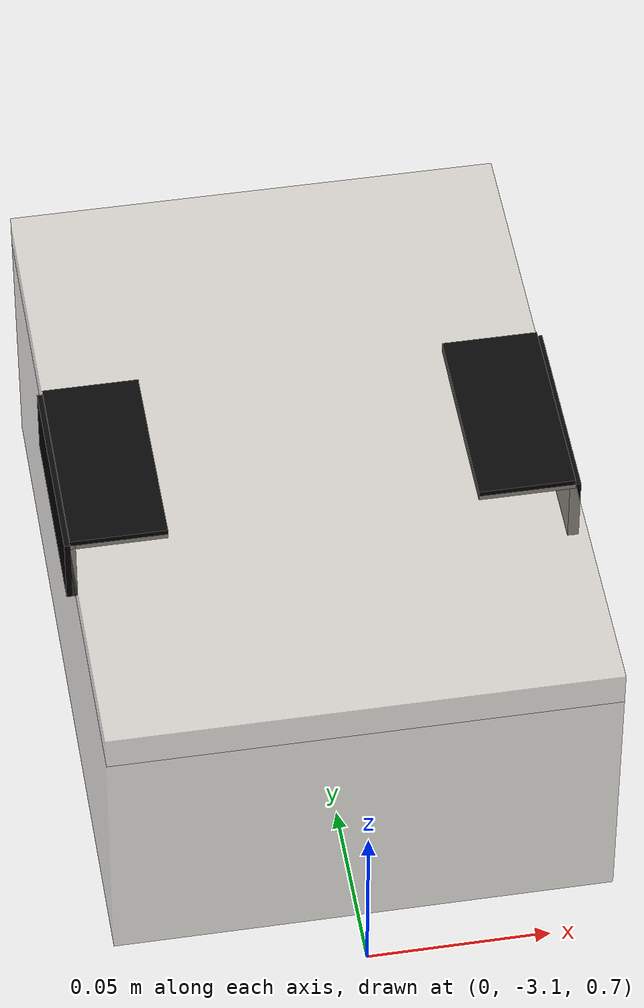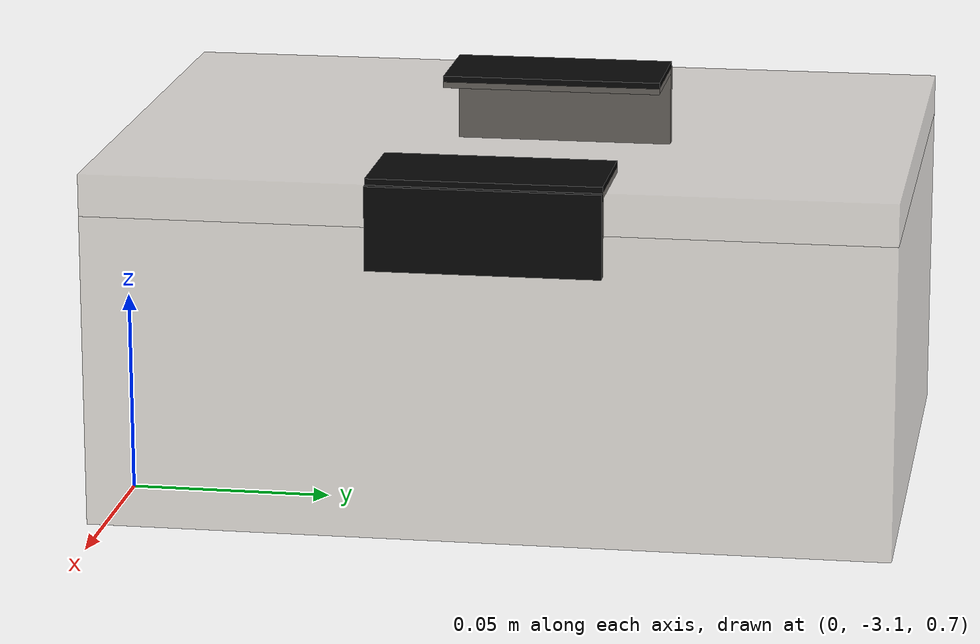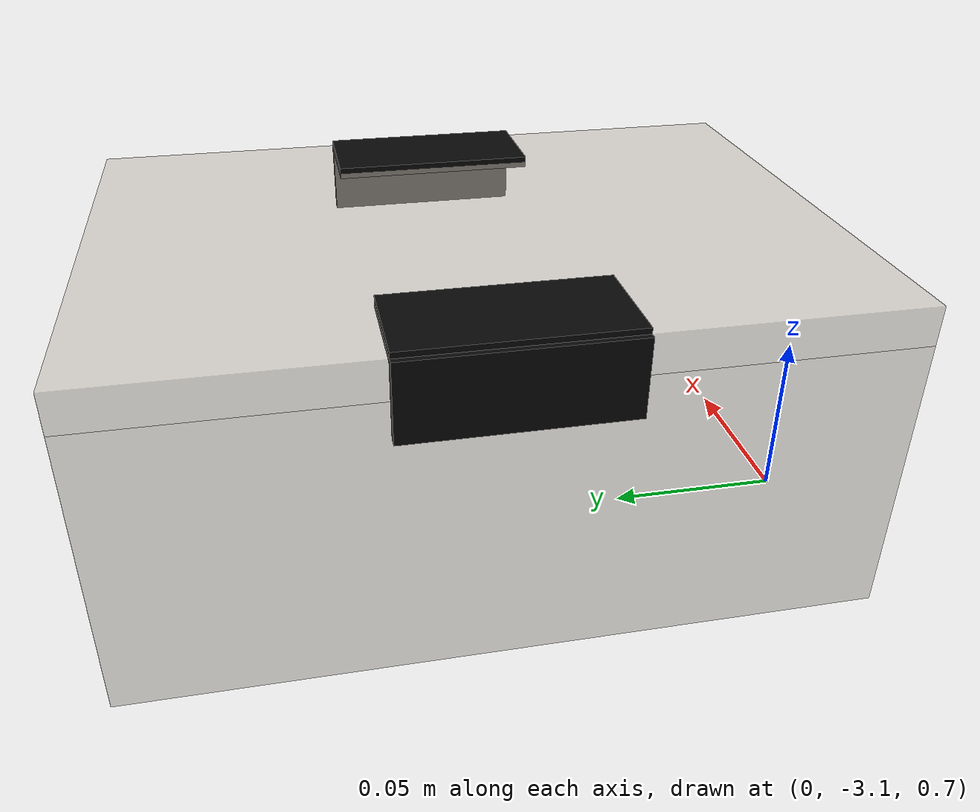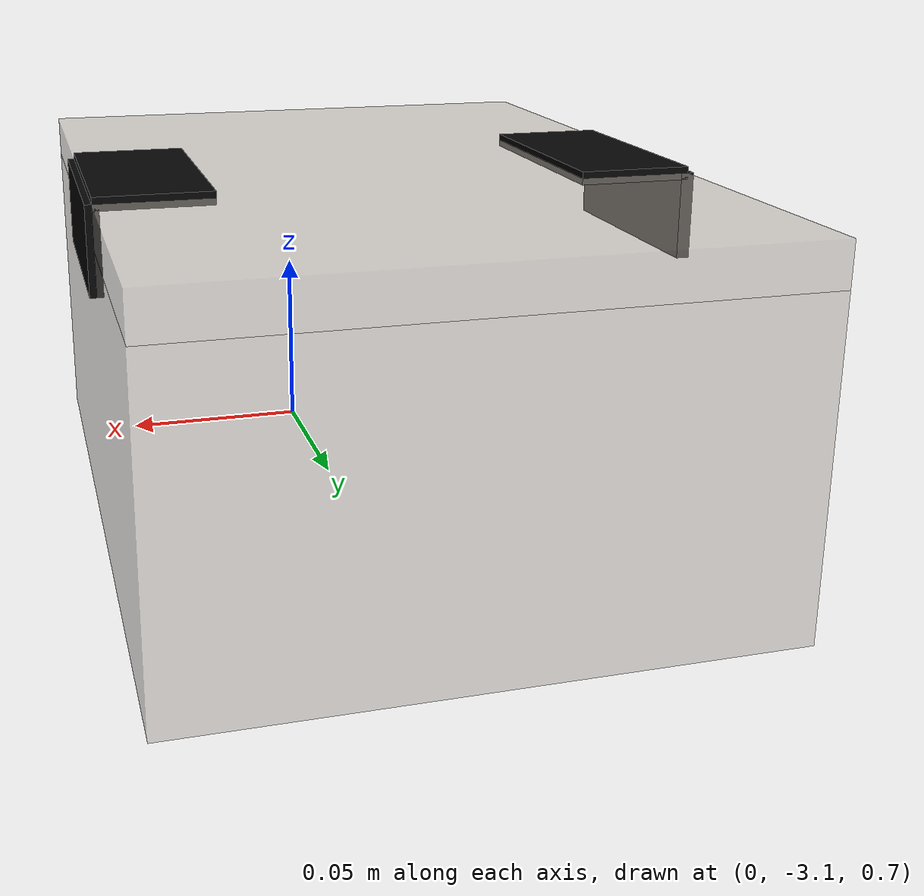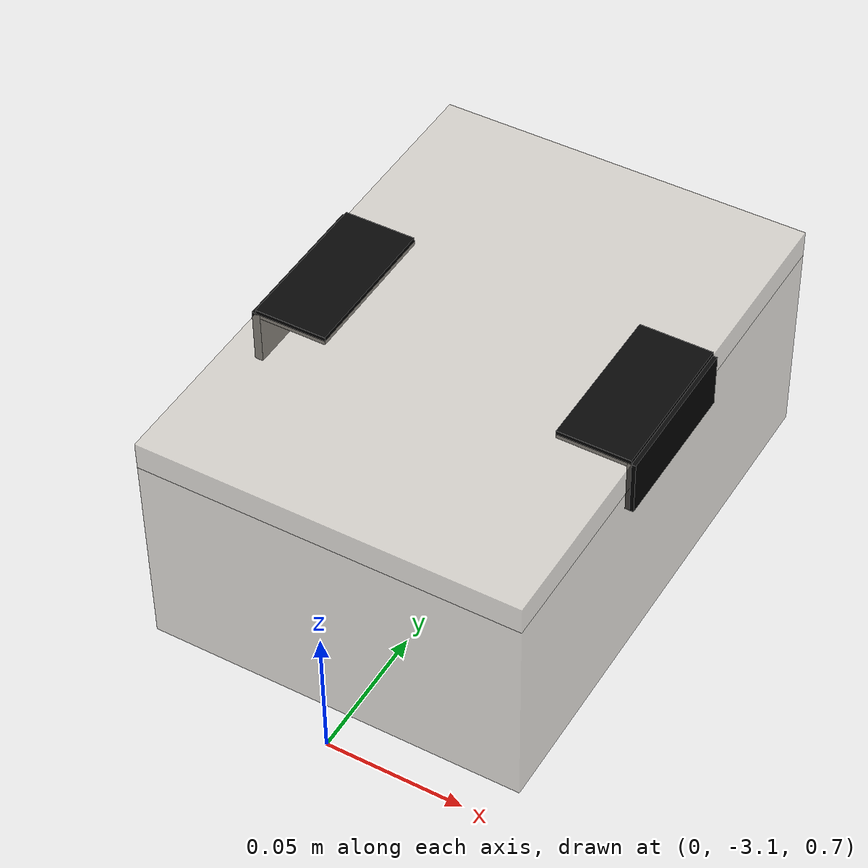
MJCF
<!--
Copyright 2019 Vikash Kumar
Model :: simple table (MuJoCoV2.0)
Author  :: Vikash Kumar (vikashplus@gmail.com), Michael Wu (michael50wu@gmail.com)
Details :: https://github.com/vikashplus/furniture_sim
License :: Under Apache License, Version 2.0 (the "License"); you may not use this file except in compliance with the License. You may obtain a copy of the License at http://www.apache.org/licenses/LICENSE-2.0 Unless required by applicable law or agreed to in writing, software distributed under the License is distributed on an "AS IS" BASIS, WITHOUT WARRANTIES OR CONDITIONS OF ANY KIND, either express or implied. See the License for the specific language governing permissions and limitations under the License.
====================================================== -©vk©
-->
<mujoco model="simpleTable">

    <compiler angle="radian" meshdir="" texturedir=""/>
    <include file="../furniture_sim/locknlock/locknlock_asset.xml"/>
    <visual>
        <headlight diffuse=".9 .9 .9"/>
    </visual>

    <worldbody>

        <body pos="0 -3 0.75">
            <include file="../furniture_sim/locknlock/locknlock_body.xml" />
        </body>

    </worldbody>

</mujoco>

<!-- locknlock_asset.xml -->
<mujoco>
    <!-- 기본 컴파일 설정 -->
    <compiler inertiafromgeom="auto" inertiagrouprange="4 4" angle="radian"/>

    <asset>
        <!-- 투명 플라스틱 텍스처(예시) -->
        <texture name="T_locknlock_clear" type="cube" width="1" height="1"
                 file="../../furniture_sim/common/textures/stone0.png"/>
        <!-- 손잡이에 쓰일 불투명 재질(예시) -->
        <texture name="T_handle_black" type="cube" width="1" height="1"
                 file="../../furniture_sim/common/textures/metal0.png"/>

        <material name="M_locknlock_clear" texture="T_locknlock_clear"
                  texrepeat="1 1" reflectance="0.3" shininess="0.2" texuniform="false" rgba="1 1 1 0.5"/>
        <material name="M_handle_black" texture="T_handle_black"
                  texrepeat="1 1" reflectance="0.3" shininess="0.4" texuniform="false" rgba="0.2 0.2 0.2 1.0"/>

        <!-- 충돌용 재질(시각화 색상 약간 파랗게) -->
        <material name="locknlock_collision_mat" rgba="0.3 0.3 1.0 0.3"
                  shininess="0" specular="0"/>
    </asset>

    <default>
        <!-- 기본 설정: Lock&Lock 본체용 -->
        <default class="locknlock_container">
            <!-- 조인트: 관절(여기서는 거의 고정) -->
            <joint damping="2" frictionloss="2" armature="0.01" limited="true"/>
            <!-- 본체 겉면: 시각화용 -->
            <geom conaffinity="0" contype="0" group="1"
                  material="M_locknlock_clear" type="box"/>
            <!-- 디폴트 충돌 설정 -->
            <default class="locknlock_collision">
                <geom conaffinity="1" condim="3" contype="0" group="4" margin="0.001"
                      material="locknlock_collision_mat"
                      solimp="0.8 0.9 0.01" solref="0.02 1"/>
            </default>
        </default>
    </default>

    <!-- 혹시 손잡이 각도를 센서로 읽고 싶다면 예시로 추가 -->
    <sensor>
        <jointpos name="handle_left_hinge_sens"  joint="handle_left_hinge"/>
        <jointpos name="handle_right_hinge_sens" joint="handle_right_hinge"/>
    </sensor>
</mujoco>

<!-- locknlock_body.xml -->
<mujocoinclude>
    <!-- 컨테이너 치수 (절반값):
         x=0.0675, y=0.095, z=0.0425
         (가로=13.5cm, 세로=19cm, 높이=8.5cm)
    -->
      <!-- ================================================
         본체(Base) : 몸통
         ================================================ -->
    <body name="base_body" pos="0 0 0" childclass="locknlock_container">

        <!-- 몸통 (가로=13.5, 세로=19, 높이=... 여기선 벽만 ~7cm 예시)
             박스 높이를 조금 줄여서 뚜껑 올라갈 자리 남김 -->
        <geom name="container_base_vis"
              size="0.0675 0.095 0.0375"
              type="box"
              pos="0 0 0"/>
        <geom class="locknlock_collision" name="container_base_col"
              size="0.0675 0.095 0.0375"
              type="box"
              pos="0 0 0"
              mass="0.5"/>
    </body>

      <!-- ================================================
         뚜껑(Lid) : 자유도 6 (free joint) + equality(hinge)
         ================================================ -->
    <body name="lid_body" pos="0 0 0.0425" childclass="locknlock_container">

        <!-- 뚜껑 윗면 지오메트리 (얇은 박스)
             가로=13.5, 세로=19, 두께=0.5cm 정도로 예시 -->
        <geom name="lid_top_vis"
              size="0.0675 0.095 0.005"
              type="box"
              pos="0 0 0"
              mass="0.2"/>
        <geom class="locknlock_collision" name="lid_top_col"
              size="0.0675 0.095 0.005"
              type="box"
              pos="0 0 0"
              mass="0.2"/>

        <!-- handle left -->
        <body name="handle_left" pos="-0.0675 0 0.005">
            <geom name="handle_left_top_vis"
                  material="M_handle_black"
                  pos="0.013 0 0"
                  size="0.013 0.0275 0.0015"
                  type="box"/>
            <geom class="locknlock_collision"
                  name="handle_left_top_col"
                  pos="0.013 0 0"
                  size="0.013 0.0275 0.0015"
                  type="box" mass="0.05"/>

            <!-- 옆면 (수직) 박스: 가로 2, 세로 5.5, 두께 0.3
                 pivot(0,0,0)에서 z = -0.03 아래로 3cm 길이 -->
            <geom name="handle_left_side_vis"
                  material="M_handle_black"
                  pos="0 0 -0.01"
                  size="0.0015 0.0275 0.01"
                  type="box"/>
            <geom class="locknlock_collision"
                  name="handle_left_side_col"
                  pos="0 0 -0.01"
                  size="0.0015 0.0275 0.01"
                  type="box" mass="0.05"/>

            <joint name="handle_left_hinge" pos="0.026 0 0" axis="0 1 0" range="0 1.57"/>

            <site name="handle_left_joint_site"
                  pos="0 0 0"
                  size="0.002"
                  rgba="1 0 0 1"
                  type="sphere" group="3"/>
        </body>

        <!-- handle right -->
        <body name="handle_right" pos="0.0675 0 0.005">
            <!-- y축 회전: 오른쪽은 0° ~ +90° 정도 -->
            <!-- 윗면 (수평) 박스:
                 pivot(0,0,0)에서 x = -0.015 (3cm 길이) -->
            <geom name="handle_right_top_vis"
                  material="M_handle_black"
                  pos="-0.013 0 0"
                  size="0.013 0.0275 0.0015"
                  type="box"/>
            <geom class="locknlock_collision"
                  name="handle_right_top_col"
                  pos="-0.013 0 0"
                  size="0.013 0.0275 0.0015"
                  type="box" mass="0.05"/>

            <!-- 옆면 (수직) 박스:
                 pivot(0,0,0)에서 z = -0.03 (3cm 아래) -->
            <geom name="handle_right_side_vis"
                  material="M_handle_black"
                  pos="0 0 -0.01"
                  size="0.0015 0.0275 0.01"
                  type="box"/>
            <geom class="locknlock_collision"
                  name="handle_right_side_col"
                  pos="0 0 -0.01"
                  size="0.0015 0.0275 0.01"
                  type="box" mass="0.05"/>

            <joint name="handle_right_hinge" pos="-0.026 0 0" axis="0 1 0" range="-1.57 0"/>

            <!-- 관절 위치 site -->
            <site name="handle_right_joint_site"
                  pos="0 0 0"
                  size="0.002"
                  rgba="0 1 0 1"
                  type="sphere" group="3"/>
        </body>

    </body>
</mujocoinclude>
